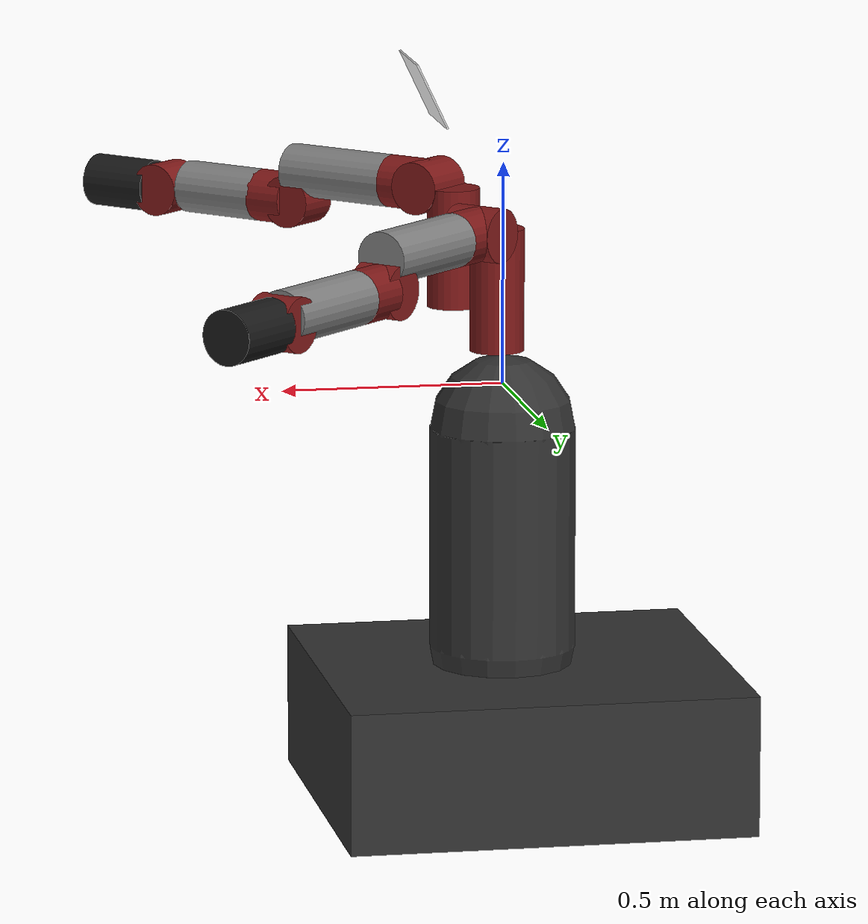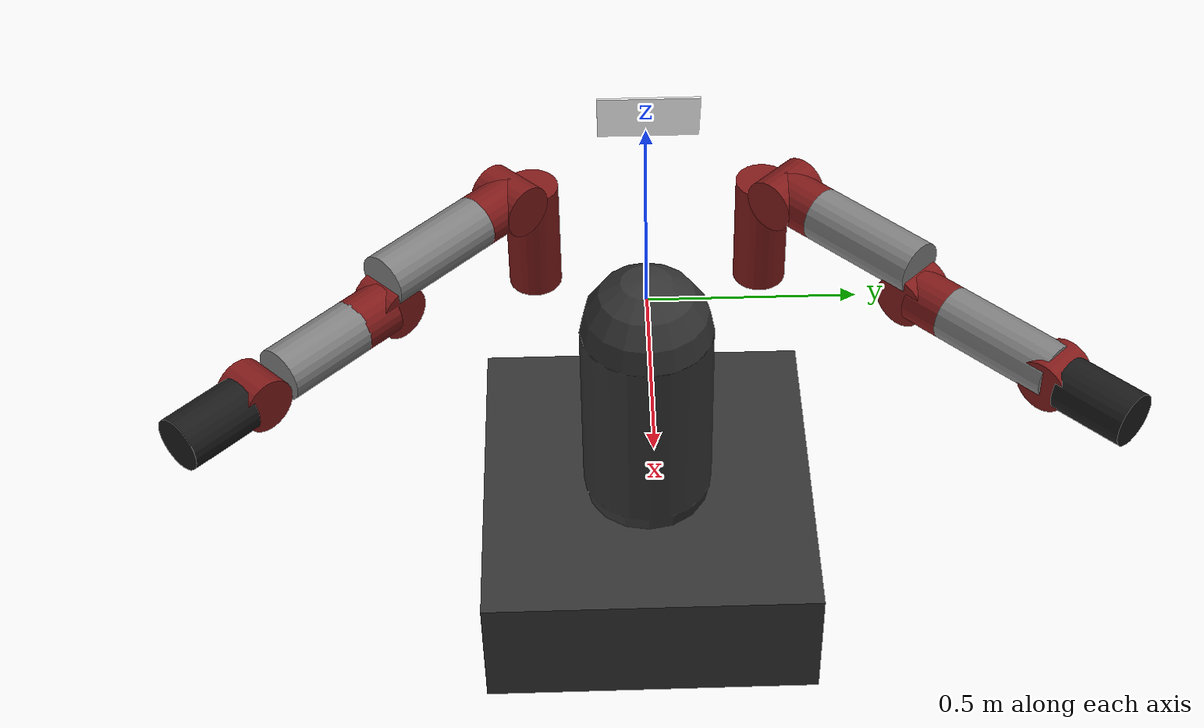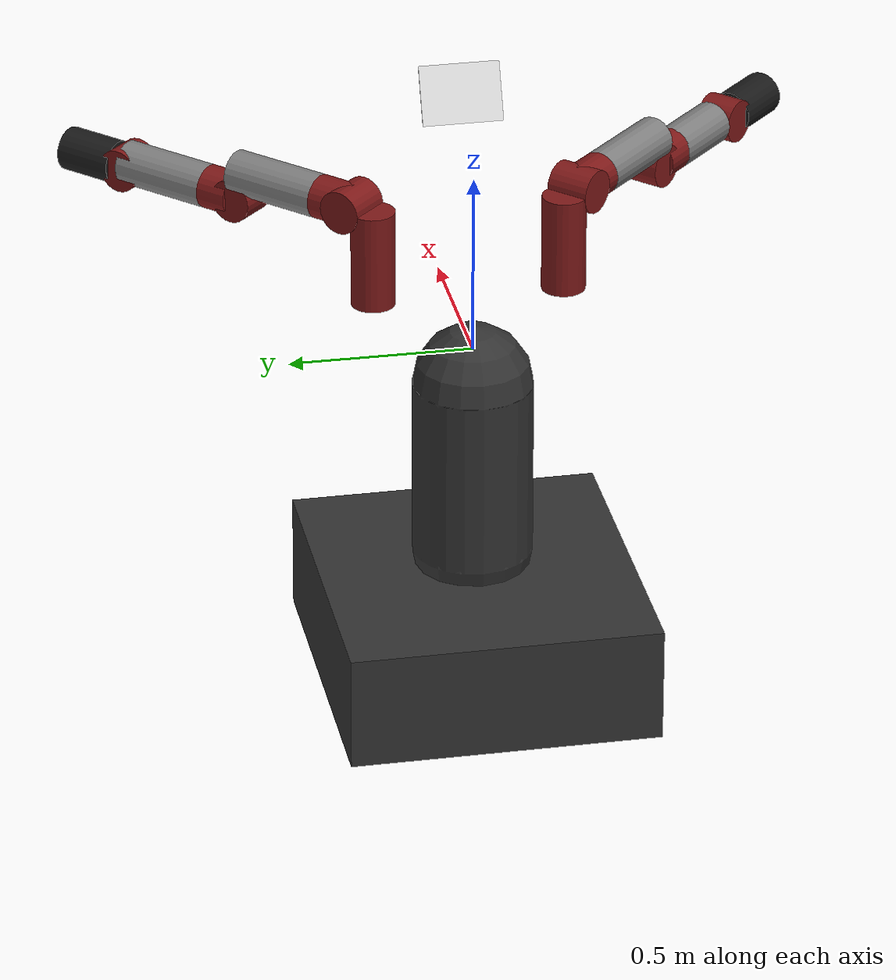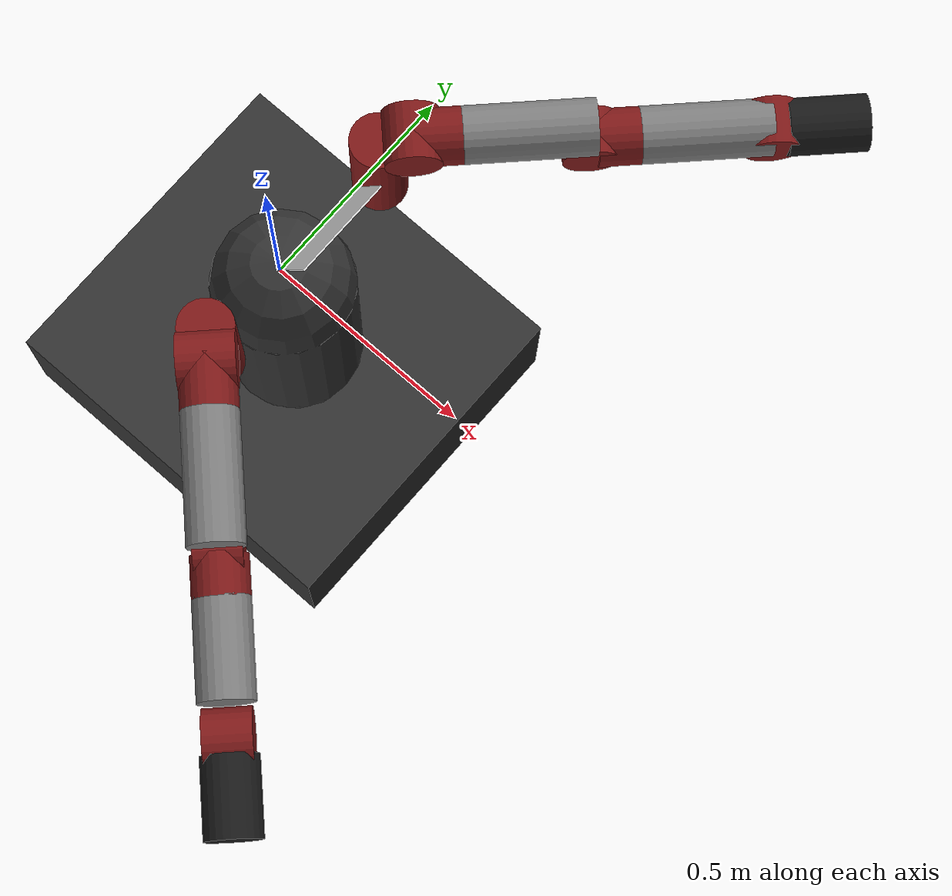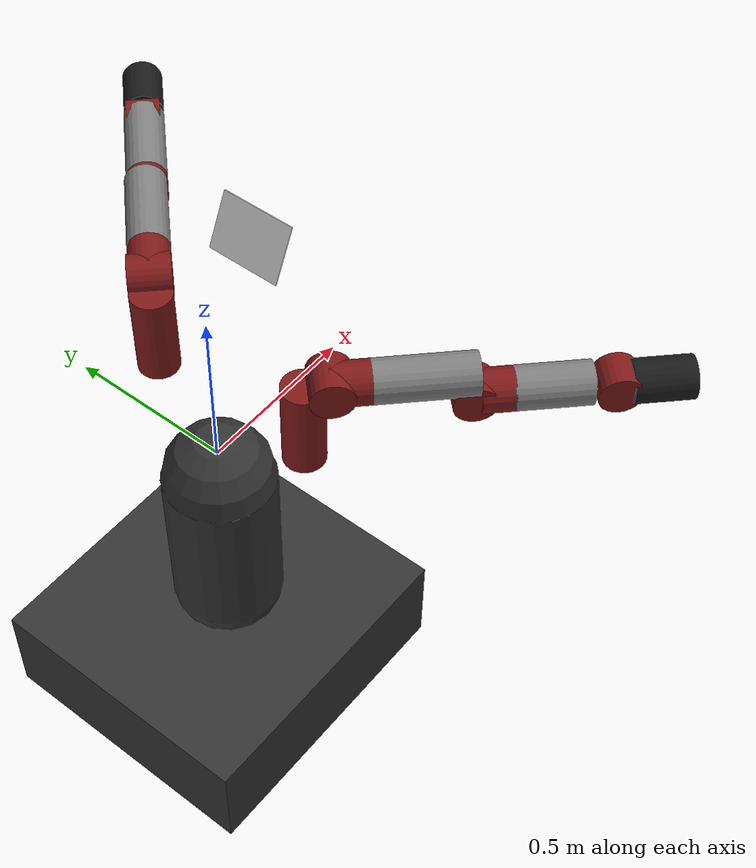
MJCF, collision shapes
<mujoco model="baxter">

  <asset>
    <mesh name="baxter_base_link"                 file="baxter_meshes/torso/base_link.STL" />
    <mesh name="baxter_link_collision"            file="baxter_meshes/torso/base_link_collision.STL" />
    <mesh name="baxter_pedestal"                  file="baxter_meshes/base/PEDESTAL.STL" />
    <mesh name="baxter_pedestal_link_collision"   file="baxter_meshes/base/pedestal_link_collision.STL" />
    <mesh name="baxter_h0"                        file="baxter_meshes/head/H0.STL" />
    <mesh name="baxter_h1"                        file="baxter_meshes/head/H1.STL" />
    <mesh name="baxter_s0"                        file="baxter_meshes/upper_shoulder/S0.STL" />
    <mesh name="baxter_s1"                        file="baxter_meshes/lower_shoulder/S1.STL" />
    <mesh name="baxter_e0"                        file="baxter_meshes/upper_elbow/E0.STL" />
    <mesh name="baxter_e1"                        file="baxter_meshes/lower_elbow/E1.STL" />
    <mesh name="baxter_w0"                        file="baxter_meshes/upper_forearm/W0.STL" />
    <mesh name="baxter_w1"                        file="baxter_meshes/lower_forearm/W1.STL" />
    <mesh name="baxter_w2"                        file="baxter_meshes/wrist/W2.STL" />
    <mesh name="baxter_paddle_tip"                file="baxter_meshes/electric_gripper/fingers/paddle_tip.STL" />
  </asset>

  <contact>
    <exclude body1="mjcbody_###_right_upper_shoulder"   body2="mjcbody_###_torso" />
    <exclude body1="mjcbody_###_right_upper_shoulder"   body2="mjcbody_###_right_upper_elbow" />
    <exclude body1="mjcbody_###_right_lower_shoulder"   body2="mjcbody_###_torso" />
    <exclude body1="mjcbody_###_left_upper_shoulder"    body2="mjcbody_###_torso" />
    <exclude body1="mjcbody_###_left_upper_shoulder"    body2="mjcbody_###_left_upper_elbow" />
    <exclude body1="mjcbody_###_left_lower_shoulder"    body2="mjcbody_###_torso" />
  </contact>

  <worldbody>
    <body name="mjcbody_###_tmjcroot" pos="0 0 0">
      <freejoint name="mjcjoint_###_root" />
      <inertial pos="0 0 0" mass="10" diaginertia="0.001 0.001 0.001" />
      <body name="mjcbody_###_torso" pos="0 0 0">
        <inertial pos="0 0 0" quat="0.997433 0.00167178 0.0715546 -0.00209003" mass="35.3365" diaginertia="1.87139 1.66268 0.779991" />
        <geom name="mjcgeom_###_torso_1" margin="0.001" contype="0" conaffinity="0" group="1" type="mesh" mesh="baxter_base_link" />
        <geom name="mjcgeom_###_torso_2" margin="0.001" type="mesh" mesh="baxter_link_collision" contype="0" conaffinity="0" group="1" />
        <body name="mjcbody_###_pedestal" pos="0 0 0">
          <inertial pos="0 0 0" quat="0.659267 -0.259505 -0.260945 0.655692" mass="60.864" diaginertia="6.0869 5.81635 4.20915" />
          <geom name="mjcgeom_###_pedestal_1" margin="0.001" contype="0" conaffinity="0" group="1" type="mesh" rgba="0.2 0.2 0.2 1" mesh="baxter_pedestal" />
          <geom name="mjcgeom_###_pedestal_2" margin="0.001" pos="-.04 0 -.8" rgba="0.2 0.2 0.2 1" type="box" size=".46 .425 .16" />
          <geom name="mjcgeom_###_pedestal_3" margin="0.001" pos="0 0 -.35" rgba="0.2 0.2 0.2 1" type="capsule" size=".165 .25" />
        </body>
        <body name="mjcbody_###_head" pos="0.06 0 0.686">
          <inertial pos="0 0 0" quat="0.339345 0.850736 -0.347392 0.201027" mass="0.547767" diaginertia="0.00474065 0.00461087 0.00199949" />
          <joint limited="true" damping="0" armature=".01" name="mjcjoint_###_head_pan" type="hinge" pos="0 0 0" axis="0 0 1" range="-90 90" />
          <geom name="mjcgeom_###_head" margin="0.001" contype="0" conaffinity="0" group="1" type="mesh" rgba="0.2 0.2 0.2 1" mesh="baxter_h0" />
          <body name="mjcbody_###_screen" pos="0.1227 0 0" quat="0.453099 0.542864 0.542864 0.453099">
            <inertial pos="0 0 0" quat="0.995785 0.0113501 -0.000390852 0.0910132" mass="0.440171" diaginertia="0.0040484 0.00275826 0.00150834" />
            <geom margin="0.001" contype="0" conaffinity="0" group="1" name="mjcgeom_###_display_1" type="mesh" mesh="baxter_h1" rgba="0.5 0.1 0.1 1" pos="0 0 -.03" euler="0 -90 0" />
            <geom margin="0.001" contype="0" conaffinity="0" group="1" name="mjcgeom_###_display_2" type="box" size="0.109 0.08 0.002" rgba=".9 .9 .9 1" pos="0 -0.016 0" quat="0.991445 0.130526 0 0" />
          </body>
        </body>
        <body name="mjcbody_###_right_arm_mount" pos="0.024645 -0.219645 0.118588" quat="0.923879 0 0 -0.382684">
          <inertial pos="0 0 0" mass="0.0001" diaginertia="1e-008 1e-008 1e-008" />
          <body name="mjcbody_###_right_upper_shoulder" pos="0.055695 0 0.011038">
            <inertial pos="0.01783 0.00086 0.19127" quat="0.975667 0.0673303 -0.206117 0.0325173" mass="5.70044" diaginertia="0.0498344 0.0377511 0.0331351" />
            <joint limited="true" damping="0" armature=".01" name="mjcjoint_###_right_s0" type="hinge" pos="0 0 0" axis="0 0 1" range="-97.5 97.5" />
            <geom name="mjcgeom_###_upper_shoulder_1" margin="0.001" contype="0" conaffinity="0" group="1" type="mesh" rgba="0.5 0.1 0.1 1" mesh="baxter_s0" />
            <geom name="mjcgeom_###_upper_shoulder_2" margin="0.001" type="cylinder" size="0.06 0.1361" rgba="0.5 0.1 0.1 1" pos="0 0 0.1361"/>
            <body name="mjcbody_###_right_lower_shoulder" pos="0.069 0 0.27035" quat="0.707107 -0.707107 0 0">
              <inertial pos="0.06845 0.00269 -0.00529" quat="0.447487 0.536948 0.56425 0.439391" mass="3.22698" diaginertia="0.0278991 0.0212327 0.0112937" />
              <joint limited="true" damping="0" armature=".01" name="mjcjoint_###_right_s1" type="hinge" pos="0 0 0" axis="0 0 1" range="-123 60" />
              <geom name="mjcgeom_###_right_lower_shoulder_1" margin="0.001" contype="0" conaffinity="0" group="1" type="mesh" rgba="0.5 0.1 0.1 1" mesh="baxter_s1" />
              <geom name="mjcgeom_###_right_lower_shoulder_2" margin="0.001" type="cylinder" size="0.06 0.06" rgba="0.5 0.1 0.1 1" pos="0 0 0" />
              <body name="mjcbody_###_right_upper_elbow" pos="0.102 0 0" quat="0.5 0.5 0.5 0.5">
                <inertial pos="-0.00276 0.00132 0.18086" quat="0.838995 -0.0423128 -0.121287 0.52876" mass="4.31272" diaginertia="0.0287695 0.0273625 0.011409" />
                <joint limited="true" damping="0" armature=".01" name="mjcjoint_###_right_e0" type="hinge" pos="0 0 0" axis="0 0 1" range="-175 175" />
                <geom name="mjcgeom_###_right_upper_elbow_1" margin="0.001" contype="0" conaffinity="0" group="1" type="mesh" rgba="0.5 0.1 0.1 1" mesh="baxter_e0" />
                <geom name="mjcgeom_###_right_upper_elbow_2" margin="0.001" type="cylinder" size="0.06 0.0535" rgba="0.5 0.1 0.1 1" pos="0 0 -0.0535"/>
                <geom name="mjcgeom_###_right_upper_elbow_3" margin="0.001" type="cylinder" size="0.06 0.1365" pos="0 0 0.1365" contype="0" conaffinity="0" group="1" />
                <body name="mjcbody_###_right_lower_elbow" pos="0.069 0 0.26242" quat="0.5 -0.5 -0.5 -0.5">
                  <inertial pos="0.02611 0.00159 -0.01117" quat="0.440433 0.577149 0.562777 0.395221" mass="2.07206" diaginertia="0.0132096 0.00950002 0.00685697" />
                  <joint limited="true" damping="0" armature=".01" name="mjcjoint_###_right_e1" type="hinge" pos="0 0 0" axis="0 0 1" range="-2.865 150" />
                  <geom name="mjcgeom_###_right_lower_elbow_1" margin="0.001" contype="0" conaffinity="0" group="1" type="mesh" rgba="0.5 0.1 0.1 1" mesh="baxter_e1" />
                  <geom name="mjcgeom_###_right_lower_elbow_2" margin="0.001" type="cylinder" size="0.06 0.05" rgba="0.5 0.1 0.1 1" pos="0 0 0" />
                  <body name="mjcbody_###_right_upper_forearm" pos="0.10359 0 0" quat="0.5 0.5 0.5 0.5">
                    <inertial pos="-0.00168 0.0046 0.13952" quat="0.892709 -0.0256256 0.00446984 0.449882" mass="2.24665" diaginertia="0.016916 0.0165511 0.00371123" />
                    <joint limited="true" damping="0" armature=".01" name="mjcjoint_###_right_w0" type="hinge" pos="0 0 0" axis="0 0 1" range="-175.27 175.27" />
                    <geom name="mjcgeom_###_right_upper_forearm_1" margin="0.001" contype="0" conaffinity="0" group="1" type="mesh" rgba="0.5 0.1 0.1 1" mesh="baxter_w0" />
                    <geom name="mjcgeom_###_right_upper_forearm_2" margin="0.001" type="cylinder" size="0.06 0.044" rgba="0.5 0.1 0.1 1" pos="0 0 -0.044" />
                    <geom name="mjcgeom_###_right_upper_forearm_3" margin="0.001" type="cylinder" size="0.06 0.1036" pos="0 0 0.1" contype="0" conaffinity="0" group="1"/>
                    <body name="mjcbody_###_right_lower_forearm" pos="0.01 0 0.2707" quat="0.5 -0.5 -0.5 -0.5">
                      <inertial pos="0.06041 0.00697 0.006" quat="0.456911 0.468526 0.475683 0.587743" mass="1.60979" diaginertia="0.00708828 0.00552689 0.00379383" />
                      <joint limited="true" damping="0" armature=".01" name="mjcjoint_###_right_w1" type="hinge" pos="0 0 0" axis="0 0 1" range="-90 120" />
                      <geom name="mjcgeom_###_right_lower_forearm_1" margin="0.001" contype="0" conaffinity="0" group="1" type="mesh" rgba="0.5 0.1 0.1 1" mesh="baxter_w1" />
                      <geom name="mjcgeom_###_right_lower_forearm_2" margin="0.001" type="cylinder" size="0.06 0.05" rgba="0.5 0.1 0.1 1" pos="0 0 0" />
                      <body name="mjcbody_###_right_wrist" pos="0.115975 0 0" quat="0.5 0.5 0.5 0.5">
                        <inertial pos="0.00198 0.00125 0.01855" quat="0.0594843 0.68926 -0.16016 0.704082" mass="0.35093" diaginertia="0.0003082 0.000269928 0.000251035" />
                        <joint limited="true" damping="0" armature=".01" name="mjcjoint_###_right_w2" type="hinge" pos="0 0 0" axis="0 0 1" range="-175.27 175.27" />
                        <geom name="mjcgeom_###_right_wrist_1" margin="0.001" contype="0" conaffinity="0" group="1" type="mesh" rgba="0.1 0.1 0.1 1" mesh="baxter_w2" />
                        <geom name="mjcgeom_###_right_wrist_2" margin="0.001" type="cylinder" size="0.06 0.0825" rgba="0.1 0.1 0.1 1" pos="0 0 0" />
                        <body name="mjcbody_###_right_hand" pos="0 0 0.11355">
				<!-- right gripper gets added here -->
                        </body>
                      </body>
                    </body>
                  </body>
                </body>
              </body>
            </body>
          </body>
        </body>
        <body name="mjcbody_###_left_arm_mount" pos="0.024645 0.219645 0.118588" quat="0.923879 0 0 0.382684">
          <inertial pos="0 0 0" mass="0.0001" diaginertia="1e-008 1e-008 1e-008" />
          <body name="mjcbody_###_left_upper_shoulder" pos="0.055695 0 0.011038">
            <inertial pos="0.01783 0.00086 0.19127" quat="0.975667 0.0673303 -0.206117 0.0325173" mass="5.70044" diaginertia="0.0498344 0.0377511 0.0331351" />
            <joint limited="true" damping="0" armature=".01" name="mjcjoint_###_left_s0" type="hinge" pos="0 0 0" axis="0 0 1" range="-97.5 97.5" />
            <geom name="mjcgeom_###_left_upper_shoulder_1" margin="0.001" contype="0" conaffinity="0" group="1" type="mesh" rgba="0.5 0.1 0.1 1" mesh="baxter_s0" />
            <geom name="mjcgeom_###_left_upper_shoulder_2" margin="0.001" type="cylinder" size="0.06 0.1361" rgba="0.5 0.1 0.1 1" pos="0 0 0.1361" />
            <body name="mjcbody_###_left_lower_shoulder" pos="0.069 0 0.27035" quat="0.707107 -0.707107 0 0">
              <inertial pos="0.06845 0.00269 -0.00529" quat="0.447487 0.536948 0.56425 0.439391" mass="3.22698" diaginertia="0.0278991 0.0212327 0.0112937" />
              <joint limited="true" damping="0" armature=".01" name="mjcjoint_###_left_s1" type="hinge" pos="0 0 0" axis="0 0 1" range="-123.014 60" />
              <geom name="mjcgeom_###_left_lower_shoulder_1" margin="0.001" contype="0" conaffinity="0" group="1" type="mesh" rgba="0.5 0.1 0.1 1" mesh="baxter_s1" />
              <geom name="mjcgeom_###_left_lower_shoulder_2" margin="0.001" type="cylinder" size="0.06 0.06" rgba="0.5 0.1 0.1 1" pos="0 0 0" />
              <body name="mjcbody_###_left_upper_elbow" pos="0.102 0 0" quat="0.5 0.5 0.5 0.5">
                <inertial pos="-0.00276 0.00132 0.18086" quat="0.838995 -0.0423128 -0.121287 0.52876" mass="4.31272" diaginertia="0.0287695 0.0273625 0.011409" />
                <joint limited="true" damping="0" armature=".01" name="mjcjoint_###_left_e0" type="hinge" pos="0 0 0" axis="0 0 1" range="-175 175" />
                <geom name="mjcgeom_###_left_upper_elbow_1" margin="0.001" contype="0" conaffinity="0" group="1" type="mesh" rgba="0.5 0.1 0.1 1" mesh="baxter_e0" />
                <geom name="mjcgeom_###_left_upper_elbow_2" margin="0.001" type="cylinder" size="0.06 0.0535" rgba="0.5 0.1 0.1 1" pos="0 0 -0.0535" />
                <geom name="mjcgeom_###_left_upper_elbow_3" margin="0.001" type="cylinder" size="0.06 0.1365" pos="0 0 0.1365" contype="0" conaffinity="0" group="1" />
                <body name="mjcbody_###_left_lower_elbow" pos="0.069 0 0.26242" quat="0.5 -0.5 -0.5 -0.5">
                  <inertial pos="0.02611 0.00159 -0.01117" quat="0.440433 0.577149 0.562777 0.395221" mass="2.07206" diaginertia="0.0132096 0.00950002 0.00685697" />
                  <joint limited="true" damping="0" armature=".01" name="mjcjoint_###_left_e1" type="hinge" pos="0 0 0" axis="0 0 1" range="-2.8647 150" />
                  <geom name="mjcgeom_###_left_lower_elbow_1" margin="0.001" contype="0" conaffinity="0" group="1" type="mesh" rgba="0.5 0.1 0.1 1" mesh="baxter_e1" />
                  <geom name="mjcgeom_###_left_lower_elbow_2" margin="0.001" type="cylinder" size="0.06 0.05" rgba="0.5 0.1 0.1 1" pos="0 0 0" />
                  <body name="mjcbody_###_left_upper_forearm" pos="0.10359 0 0" quat="0.5 0.5 0.5 0.5">
                    <inertial pos="-0.00168 0.0046 0.13952" quat="0.892709 -0.0256256 0.00446984 0.449882" mass="2.24665" diaginertia="0.016916 0.0165511 0.00371123" />
                    <joint limited="true" damping="0" armature=".01" name="mjcjoint_###_left_w0" type="hinge" pos="0 0 0" axis="0 0 1" range="-175.26 175.26" />
                    <geom name="mjcgeom_###_left_upper_forearm_1" margin="0.001" contype="0" conaffinity="0" group="1" type="mesh" rgba="0.5 0.1 0.1 1" mesh="baxter_w0" />
                    <geom name="mjcgeom_###_left_upper_forearm_2" margin="0.001" type="cylinder" size="0.06 0.044" rgba="0.5 0.1 0.1 1" pos="0 0 -0.044" />
                    <geom name="mjcgeom_###_left_upper_forearm_3" margin="0.001" type="cylinder" size="0.06 0.136" pos="0 0 0.136" contype="0" conaffinity="0" group="1" />
                    <body name="mjcbody_###_left_lower_forearm" pos="0.01 0 0.2707" quat="0.5 -0.5 -0.5 -0.5">
                      <inertial pos="0.06041 0.00697 0.006" quat="0.456911 0.468526 0.475683 0.587743" mass="1.60979" diaginertia="0.00708828 0.00552689 0.00379383" />
                      <joint limited="true" damping="0" armature=".01" name="mjcjoint_###_left_w1" type="hinge" pos="0 0 0" axis="0 0 1" range="-90 120" />
                      <geom name="mjcgeom_###_left_lower_forearm_1" margin="0.001" contype="0" conaffinity="0" group="1" type="mesh" rgba="0.5 0.1 0.1 1" mesh="baxter_w1" />
                      <geom name="mjcgeom_###_left_lower_forearm_2" margin="0.001" type="cylinder" size="0.06 0.05" rgba="0.5 0.1 0.1 1" pos="0 0 0" />
                      <body name="mjcbody_###_left_wrist" pos="0.115975 0 0" quat="0.5 0.5 0.5 0.5">
                        <inertial pos="0.00198 0.00125 0.01855" quat="0.0594843 0.68926 -0.16016 0.704082" mass="0.35093" diaginertia="0.0003082 0.000269928 0.000251035" />
                        <joint limited="true" damping="0" armature=".01" name="mjcjoint_###_left_w2" type="hinge" pos="0 0 0" axis="0 0 1" range="-175.26 175.26" />
                        <geom name="mjcgeom_###_left_wrist_1" margin="0.001" contype="0" conaffinity="0" group="1" type="mesh" rgba="0.1 0.1 0.1 1" mesh="baxter_w2" />
                        <geom name="mjcgeom_###_left_wrist_2" margin="0.001" type="cylinder" size="0.06 0.0825" rgba="0.1 0.1 0.1 1" pos="0 0 0" />
                        <body name="mjcbody_###_left_hand" pos="0 0 0.11355">
       				<!-- left gripper gets added here -->
                        </body>
                      </body>
                    </body>
                  </body>
                </body>
              </body>
            </body>
          </body>
        </body>
      </body>
    </body>
  </worldbody>
  <actuator>
    <velocity name="mjcact_###_right_s0" joint="mjcjoint_###_right_s0" ctrlrange="-2 2" ctrllimited="true" kv="60"/>
    <velocity name="mjcact_###_right_s1" joint="mjcjoint_###_right_s1" ctrlrange="-2 2" ctrllimited="true" kv="50"/>
    <velocity name="mjcact_###_right_e0" joint="mjcjoint_###_right_e0" ctrlrange="-2 2" ctrllimited="true" kv="20"/>
    <velocity name="mjcact_###_right_e1" joint="mjcjoint_###_right_e1" ctrlrange="-2 2" ctrllimited="true" kv="20"/>
    <velocity name="mjcact_###_right_w0" joint="mjcjoint_###_right_w0" ctrlrange="-4 4" ctrllimited="true" kv="5" />
    <velocity name="mjcact_###_right_w1" joint="mjcjoint_###_right_w1" ctrlrange="-4 4" ctrllimited="true" kv="5" />
    <velocity name="mjcact_###_right_w2" joint="mjcjoint_###_right_w2" ctrlrange="-4 4" ctrllimited="true" kv="5" />

    <velocity name="mjcact_###_left_s0" joint="mjcjoint_###_left_s0" ctrlrange="-2 2" ctrllimited="true" kv="60"/>
    <velocity name="mjcact_###_left_s1" joint="mjcjoint_###_left_s1" ctrlrange="-2 2" ctrllimited="true" kv="50"/>
    <velocity name="mjcact_###_left_e0" joint="mjcjoint_###_left_e0" ctrlrange="-2 2" ctrllimited="true" kv="20"/>
    <velocity name="mjcact_###_left_e1" joint="mjcjoint_###_left_e1" ctrlrange="-2 2" ctrllimited="true" kv="20"/>
    <velocity name="mjcact_###_left_w0" joint="mjcjoint_###_left_w0" ctrlrange="-4 4" ctrllimited="true" kv="5" />
    <velocity name="mjcact_###_left_w1" joint="mjcjoint_###_left_w1" ctrlrange="-4 4" ctrllimited="true" kv="5" />
    <velocity name="mjcact_###_left_w2" joint="mjcjoint_###_left_w2" ctrlrange="-4 4" ctrllimited="true" kv="5" />

</actuator>
</mujoco>
